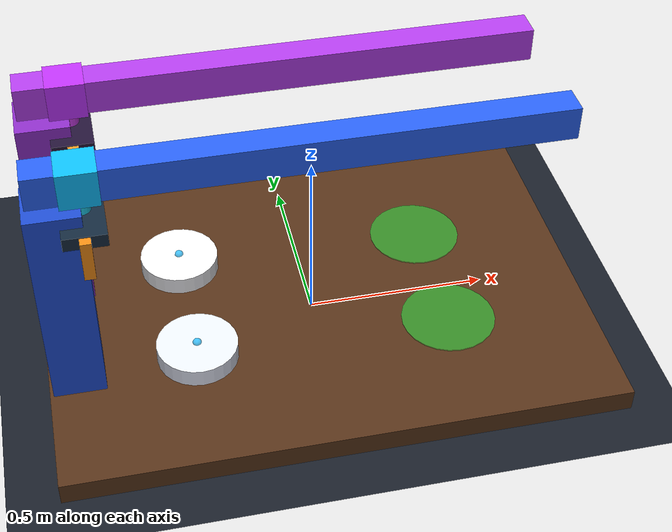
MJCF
<mujoco model="champ_tableops_bimanual">
  <compiler angle="radian" autolimits="true"/>
  <option timestep="0.002" gravity="0 0 -9.81"/>

  <default>
    <joint damping="25" armature="0.02"/>
    <geom friction="0.9 0.05 0.01"/>
  </default>

  <worldbody>
    <light pos="0 -0.5 2.5" dir="0 0 -1" diffuse="0.9 0.9 0.9"/>
    <camera name="demo" pos="0 -2.15 1.25" xyaxes="1 0 0 0 0.5 0.866"/>

    <geom name="floor" type="plane" pos="0 0 -0.01" size="2 2 0.1" rgba="0.10 0.12 0.16 1"/>
    <geom name="table" type="box" pos="0 0 0" size="0.75 0.55 0.05" rgba="0.34 0.20 0.10 1"/>

    <site name="target_left" type="cylinder" pos="0.35 -0.18 0.052" size="0.13 0.002" rgba="0.1 1 0.25 0.45"/>
    <site name="target_right" type="cylinder" pos="0.35 0.18 0.052" size="0.13 0.002" rgba="0.1 1 0.25 0.45"/>

    <body name="plate_left" pos="-0.35 -0.18 0.075">
      <freejoint/>
      <geom name="plate_left_geom" type="cylinder" size="0.11 0.025" mass="0.25" rgba="0.92 0.94 1 1"/>
      <site name="plate_left_grasp_site" pos="0 0 0.025" size="0.012" rgba="0 0.7 1 0.7"/>
    </body>

    <body name="plate_right" pos="-0.35 0.18 0.075">
      <freejoint/>
      <geom name="plate_right_geom" type="cylinder" size="0.11 0.025" mass="0.25" rgba="0.96 0.96 0.98 1"/>
      <site name="plate_right_grasp_site" pos="0 0 0.025" size="0.012" rgba="0 0.7 1 0.7"/>
    </body>

    <geom name="left_robot_pedestal" type="box" pos="-0.67 -0.18 0.32" size="0.07 0.07 0.32" rgba="0.12 0.30 0.82 1" contype="0" conaffinity="0"/>
    <geom name="left_robot_beam" type="box" pos="-0.05 -0.18 0.70" size="0.68 0.04 0.045" rgba="0.16 0.38 0.95 1" contype="0" conaffinity="0"/>

    <body name="left_robot_x" pos="-0.60 -0.18 0.70" gravcomp="1">
      <joint name="left_slide_x" type="slide" axis="1 0 0" range="0 1.15"/>
      <geom type="box" size="0.05 0.05 0.05" rgba="0.05 0.75 1 1" contype="0" conaffinity="0"/>
      <body name="left_robot_y" gravcomp="1">
        <joint name="left_slide_y" type="slide" axis="0 1 0" range="-0.08 0.08"/>
        <geom type="box" size="0.045 0.045 0.045" rgba="0.05 0.65 0.9 1" contype="0" conaffinity="0"/>
        <body name="left_gripper" gravcomp="1">
          <joint name="left_slide_z" type="slide" axis="0 0 1" range="-0.52 0" damping="55"/>
          <geom type="capsule" fromto="0 0 0 0 0 -0.10" size="0.025" rgba="0.12 0.82 0.95 1" contype="0" conaffinity="0"/>
          <geom type="box" pos="0 0 -0.11" size="0.055 0.105 0.018" rgba="0.08 0.16 0.24 1" contype="0" conaffinity="0"/>
          <body name="left_finger_a" pos="0 -0.115 -0.15" gravcomp="1">
            <joint name="left_finger_a_joint" type="slide" axis="0 1 0" range="0 0.04" damping="8"/>
            <geom type="box" size="0.014 0.014 0.055" rgba="0.95 0.55 0.08 1" contype="0" conaffinity="0"/>
          </body>
          <body name="left_finger_b" pos="0 0.115 -0.15" gravcomp="1">
            <joint name="left_finger_b_joint" type="slide" axis="0 -1 0" range="0 0.04" damping="8"/>
            <geom type="box" size="0.014 0.014 0.055" rgba="0.95 0.55 0.08 1" contype="0" conaffinity="0"/>
          </body>
          <site name="left_grasp_site" pos="0 0 -0.155" size="0.015" rgba="1 0.2 0.1 0.8"/>
        </body>
      </body>
    </body>

    <geom name="right_robot_pedestal" type="box" pos="-0.67 0.18 0.32" size="0.07 0.07 0.32" rgba="0.55 0.18 0.78 1" contype="0" conaffinity="0"/>
    <geom name="right_robot_beam" type="box" pos="-0.05 0.18 0.70" size="0.68 0.04 0.045" rgba="0.70 0.24 0.92 1" contype="0" conaffinity="0"/>

    <body name="right_robot_x" pos="-0.60 0.18 0.70" gravcomp="1">
      <joint name="right_slide_x" type="slide" axis="1 0 0" range="0 1.15"/>
      <geom type="box" size="0.05 0.05 0.05" rgba="0.75 0.20 1 1" contype="0" conaffinity="0"/>
      <body name="right_robot_y" gravcomp="1">
        <joint name="right_slide_y" type="slide" axis="0 1 0" range="-0.08 0.08"/>
        <geom type="box" size="0.045 0.045 0.045" rgba="0.65 0.18 0.90 1" contype="0" conaffinity="0"/>
        <body name="right_gripper" gravcomp="1">
          <joint name="right_slide_z" type="slide" axis="0 0 1" range="-0.52 0" damping="55"/>
          <geom type="capsule" fromto="0 0 0 0 0 -0.10" size="0.025" rgba="0.82 0.25 0.95 1" contype="0" conaffinity="0"/>
          <geom type="box" pos="0 0 -0.11" size="0.055 0.105 0.018" rgba="0.14 0.08 0.22 1" contype="0" conaffinity="0"/>
          <body name="right_finger_a" pos="0 -0.115 -0.15" gravcomp="1">
            <joint name="right_finger_a_joint" type="slide" axis="0 1 0" range="0 0.04" damping="8"/>
            <geom type="box" size="0.014 0.014 0.055" rgba="1 0.62 0.16 1" contype="0" conaffinity="0"/>
          </body>
          <body name="right_finger_b" pos="0 0.115 -0.15" gravcomp="1">
            <joint name="right_finger_b_joint" type="slide" axis="0 -1 0" range="0 0.04" damping="8"/>
            <geom type="box" size="0.014 0.014 0.055" rgba="1 0.62 0.16 1" contype="0" conaffinity="0"/>
          </body>
          <site name="right_grasp_site" pos="0 0 -0.155" size="0.015" rgba="1 0.2 0.1 0.8"/>
        </body>
      </body>
    </body>
  </worldbody>

  <equality>
    <weld name="left_grasp_weld" site1="left_grasp_site" site2="plate_left_grasp_site" active="false" solref="0.01 1"/>
    <weld name="right_grasp_weld" site1="right_grasp_site" site2="plate_right_grasp_site" active="false" solref="0.01 1"/>
  </equality>

  <actuator>
    <position name="left_x_position" joint="left_slide_x" kp="350" ctrlrange="0 1.15" ctrllimited="true"/>
    <position name="left_y_position" joint="left_slide_y" kp="350" ctrlrange="-0.08 0.08" ctrllimited="true"/>
    <position name="left_z_position" joint="left_slide_z" kp="500" ctrlrange="-0.52 0" ctrllimited="true"/>
    <position name="left_grip_a" joint="left_finger_a_joint" kp="120" ctrlrange="0 0.04" ctrllimited="true"/>
    <position name="left_grip_b" joint="left_finger_b_joint" kp="120" ctrlrange="0 0.04" ctrllimited="true"/>

    <position name="right_x_position" joint="right_slide_x" kp="350" ctrlrange="0 1.15" ctrllimited="true"/>
    <position name="right_y_position" joint="right_slide_y" kp="350" ctrlrange="-0.08 0.08" ctrllimited="true"/>
    <position name="right_z_position" joint="right_slide_z" kp="500" ctrlrange="-0.52 0" ctrllimited="true"/>
    <position name="right_grip_a" joint="right_finger_a_joint" kp="120" ctrlrange="0 0.04" ctrllimited="true"/>
    <position name="right_grip_b" joint="right_finger_b_joint" kp="120" ctrlrange="0 0.04" ctrllimited="true"/>
  </actuator>
</mujoco>
